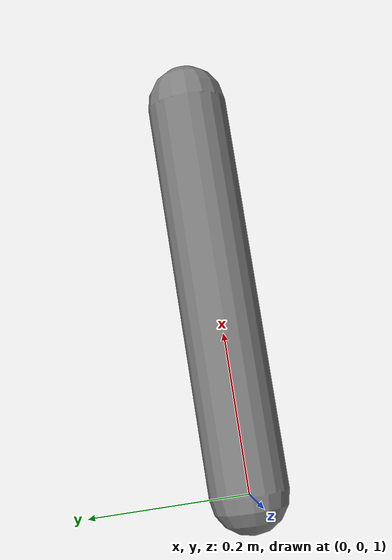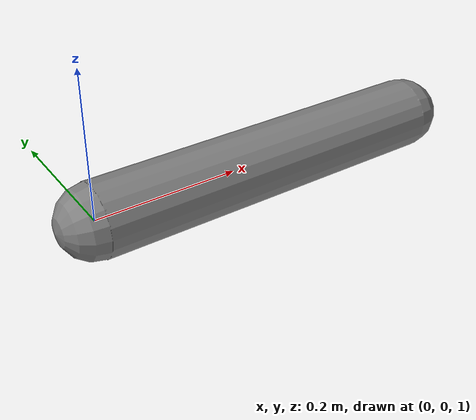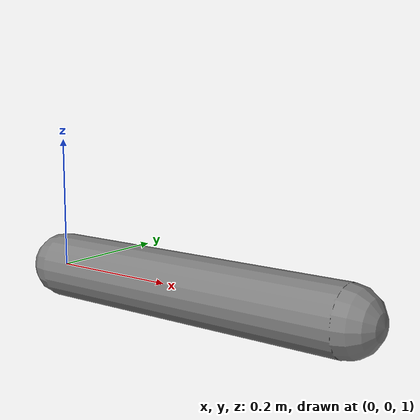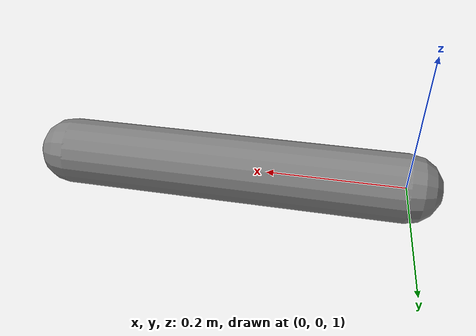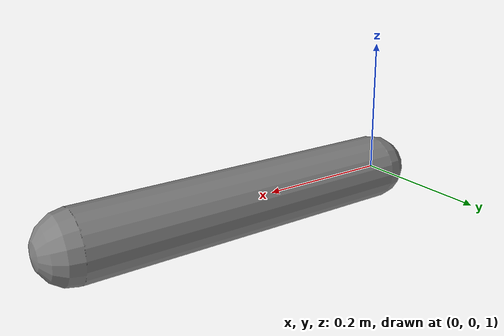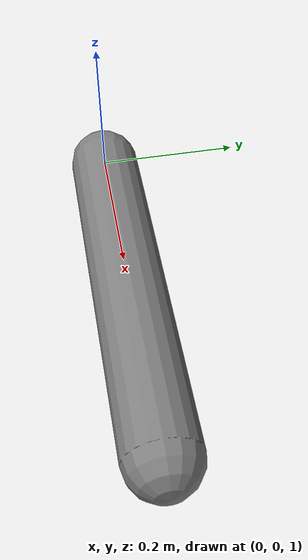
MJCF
<mujoco model="keyframe-hinge">
  <compiler angle="radian"/>
  <option gravity="0 0 -9.81" timestep="0.002" integrator="RK4">
    <flag energy="enable"/>
  </option>
  <worldbody>
    <body name="link" pos="0 0 1">
      <joint name="hinge" type="hinge" axis="0 1 0"/>
      <geom type="capsule" size="0.05" fromto="0 0 0 0.5 0 0" mass="1.0"/>
    </body>
  </worldbody>
  <keyframe>
    <key name="rest"       qpos="0.0"    qvel="0.0" time="0.0"/>
    <key name="horizontal" qpos="1.5708" qvel="0.5" time="2.5"/>
    <key name="inverted"   qpos="3.1416" qvel="-1.0" time="5.0"/>
  </keyframe>
</mujoco>
